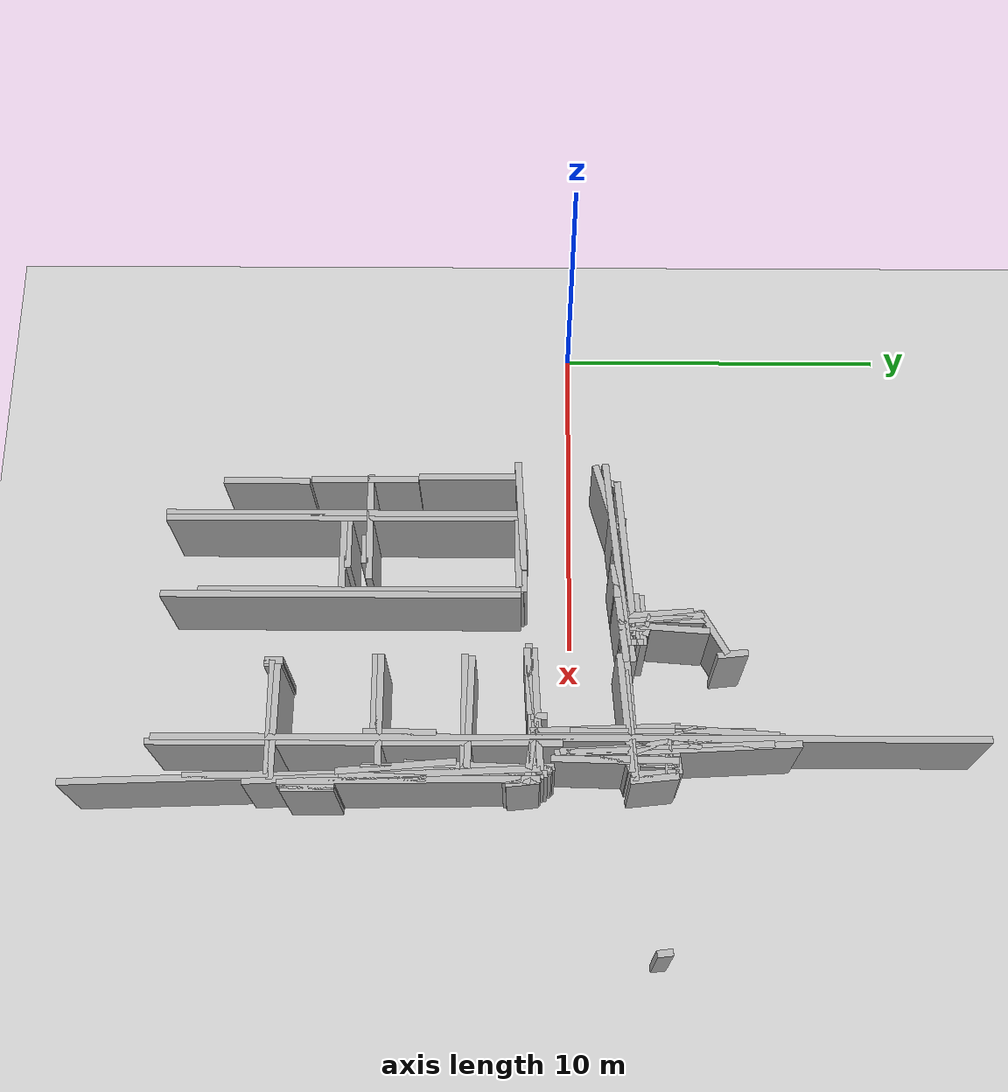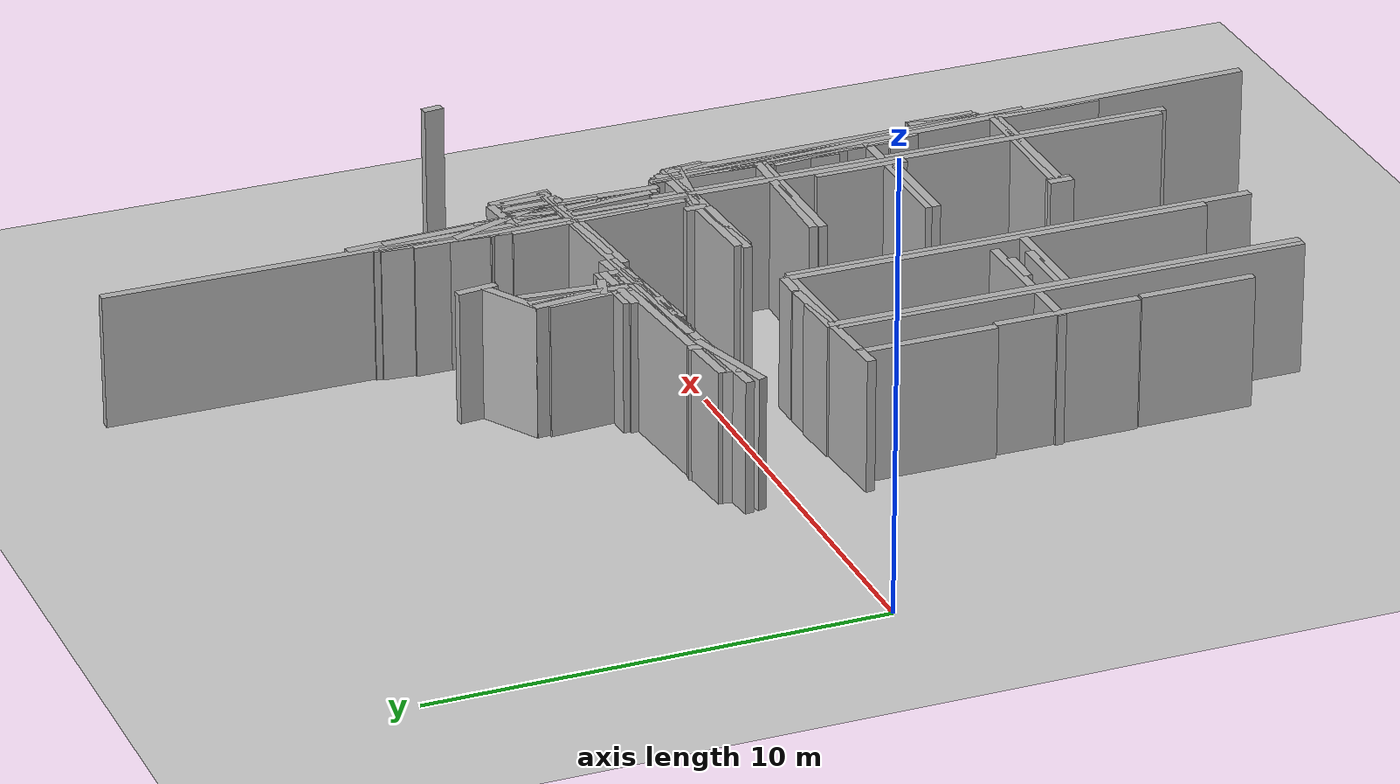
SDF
<sdf version="1.6">
 <world name="aboureyhan">
  <model name="ground_plane">
   <static>true</static>
   <link name="link">
    <collision name="collision">
     <geometry><plane><normal>0 0 1</normal><size>100 100</size></plane></geometry>
    </collision>
    <visual name="visual">
     <geometry><plane><normal>0 0 1</normal><size>500 500</size></plane></geometry>
     <material>
      <ambient>0.8 0.8 0.8 1</ambient>
      <diffuse>0.8 0.8 0.8 1</diffuse>
      <specular>0.8 0.8 0.8 1</specular>
     </material>
    </visual>
   </link>
  </model>
  <model name="wall_3">
   <static>true</static>
   <pose>13.325000000000001 0.9499999999999993 1.5 0 0 -1.5359267452401064</pose>
   <link name="link">
    <collision name="collision"><geometry><box><size>4.302615483633186 0.2 3.0</size></box></geometry></collision>
    <visual name="visual">
     <geometry><box><size>4.302615483633186 0.2 3.0</size></box></geometry>
     <material><ambient>0.5 0.5 0.5 1</ambient><diffuse>0.7 0.7 0.7 1</diffuse></material>
    </visual>
   </link>
  </model>
  <model name="wall_10">
   <static>true</static>
   <pose>9.25 -6.825000000000001 1.5 0 0 1.5707963267948966</pose>
   <link name="link">
    <collision name="collision">
     <geometry><box><size>10.650000000000002 0.2 3.0</size></box></geometry>
    </collision>
    <visual name="visual">
     <geometry><box><size>10.650000000000002 0.2 3.0</size></box></geometry>
     <material><ambient>0.5 0.5 0.5 1</ambient><diffuse>0.7 0.7 0.7 1</diffuse></material>
    </visual>
   </link>
  </model>
  <model name="wall_11">
   <static>true</static>
   <pose>6.800000000000001 -6.775 1.5 0 0 1.5707963267948966</pose>
   <link name="link">
    <collision name="collision">
     <geometry><box><size>10.750000000000004 0.2 3.0</size></box></geometry>
    </collision>
    <visual name="visual">
     <geometry><box><size>10.750000000000004 0.2 3.0</size></box></geometry>
     <material><ambient>0.5 0.5 0.5 1</ambient><diffuse>0.7 0.7 0.7 1</diffuse></material>
    </visual>
   </link>
  </model>
  <model name="wall_16">
   <static>true</static>
   <pose>6.65 -6.850000000000003 1.5 0 0 1.5707963267948966</pose>
   <link name="link">
    <collision name="collision">
     <geometry><box><size>10.599999999999998 0.2 3.0</size></box></geometry>
    </collision>
    <visual name="visual">
     <geometry><box><size>10.599999999999998 0.2 3.0</size></box></geometry>
     <material><ambient>0.5 0.5 0.5 1</ambient><diffuse>0.7 0.7 0.7 1</diffuse></material>
    </visual>
   </link>
  </model>
  <model name="wall_28">
   <static>true</static>
   <pose>13.600000000000001 -0.02500000000000213 1.5 0 0 1.5707963267948966</pose>
   <link name="link">
    <collision name="collision"><geometry><box><size>24.15 0.2 3.0</size></box></geometry></collision>
    <visual name="visual">
     <geometry><box><size>24.15 0.2 3.0</size></box></geometry>
     <material><ambient>0.5 0.5 0.5 1</ambient><diffuse>0.7 0.7 0.7 1</diffuse></material>
    </visual>
   </link>
  </model>
  <model name="wall_46">
   <static>true</static>
   <pose>14.700000000000003 -7.575000000000001 1.5 0 0 -1.5354753335833098</pose>
   <link name="link">
    <collision name="collision">
     <geometry><box><size>14.158831166448735 0.2 3.0</size></box></geometry>
    </collision>
    <visual name="visual">
     <geometry><box><size>14.158831166448735 0.2 3.0</size></box></geometry>
     <material><ambient>0.5 0.5 0.5 1</ambient><diffuse>0.7 0.7 0.7 1</diffuse></material>
    </visual>
   </link>
  </model>
  <model name="wall_49">
   <static>true</static>
   <pose>9.100000000000001 -6.225 1.5 0 0 1.5707963267948966</pose>
   <link name="link">
    <collision name="collision"><geometry><box><size>9.650000000000002 0.2 3.0</size></box></geometry></collision>
    <visual name="visual">
     <geometry><box><size>9.650000000000002 0.2 3.0</size></box></geometry>
     <material><ambient>0.5 0.5 0.5 1</ambient><diffuse>0.7 0.7 0.7 1</diffuse></material>
    </visual>
   </link>
  </model>
  <model name="wall_61">
   <static>true</static>
   <pose>14.700000000000001 -5.15 1.5 0 0 -1.52377219495215</pose>
   <link name="link">
    <collision name="collision"><geometry><box><size>8.509406559801926 0.2 3.0</size></box></geometry></collision>
    <visual name="visual">
     <geometry><box><size>8.509406559801926 0.2 3.0</size></box></geometry>
     <material><ambient>0.5 0.5 0.5 1</ambient><diffuse>0.7 0.7 0.7 1</diffuse></material>
    </visual>
   </link>
  </model>
  <model name="wall_79">
   <static>true</static>
   <pose>14.825000000000001 -1.4499999999999993 1.5 0 0 -1.525373047373319</pose>
   <link name="link">
    <collision name="collision">
     <geometry><box><size>1.1011357772772634 0.2 3.0</size></box></geometry>
    </collision>
    <visual name="visual">
     <geometry><box><size>1.1011357772772634 0.2 3.0</size></box></geometry>
     <material><ambient>0.5 0.5 0.5 1</ambient><diffuse>0.7 0.7 0.7 1</diffuse></material>
    </visual>
   </link>
  </model>
  <model name="wall_82">
   <static>true</static>
   <pose>15.025 -7.550000000000001 1.5 0 0 1.539556493364628</pose>
   <link name="link">
    <collision name="collision">
     <geometry><box><size>1.6007810593582135 0.2 3.0</size></box></geometry>
    </collision>
    <visual name="visual">
     <geometry><box><size>1.6007810593582135 0.2 3.0</size></box></geometry>
     <material><ambient>0.5 0.5 0.5 1</ambient><diffuse>0.7 0.7 0.7 1</diffuse></material>
    </visual>
   </link>
  </model>
  <model name="wall_85">
   <static>true</static>
   <pose>10.250000000000002 2.724999999999998 1.5 0 0 1.4954674359665567</pose>
   <link name="link">
    <collision name="collision"><geometry><box><size>2.657536453183661 0.2 3.0</size></box></geometry></collision>
    <visual name="visual">
     <geometry><box><size>2.657536453183661 0.2 3.0</size></box></geometry>
     <material><ambient>0.5 0.5 0.5 1</ambient><diffuse>0.7 0.7 0.7 1</diffuse></material>
    </visual>
   </link>
  </model>
  <model name="wall_91">
   <static>true</static>
   <pose>12.850000000000001 -1.1750000000000007 1.5 0 0 0.03569911267932361</pose>
   <link name="link">
    <collision name="collision"><geometry><box><size>4.202677717836573 0.2 3.0</size></box></geometry></collision>
    <visual name="visual">
     <geometry><box><size>4.202677717836573 0.2 3.0</size></box></geometry>
     <material><ambient>0.5 0.5 0.5 1</ambient><diffuse>0.7 0.7 0.7 1</diffuse></material>
    </visual>
   </link>
  </model>
  <model name="wall_110">
   <static>true</static>
   <pose>13.75 -6.25 1.5 0 0 1.5707963267948966</pose>
   <link name="link">
    <collision name="collision"><geometry><box><size>12.0 0.2 3.0</size></box></geometry></collision>
    <visual name="visual">
     <geometry><box><size>12.0 0.2 3.0</size></box></geometry>
     <material><ambient>0.5 0.5 0.5 1</ambient><diffuse>0.7 0.7 0.7 1</diffuse></material>
    </visual>
   </link>
  </model>
  <model name="wall_112">
   <static>true</static>
   <pose>13.200000000000001 1.6749999999999972 1.5 0 0 0.07561314323682983</pose>
   <link name="link">
    <collision name="collision">
     <geometry><box><size>3.3094561486745833 0.2 3.0</size></box></geometry>
    </collision>
    <visual name="visual">
     <geometry><box><size>3.3094561486745833 0.2 3.0</size></box></geometry>
     <material><ambient>0.5 0.5 0.5 1</ambient><diffuse>0.7 0.7 0.7 1</diffuse></material>
    </visual>
   </link>
  </model>
  <model name="wall_121">
   <static>true</static>
   <pose>5.450000000000001 -3.0500000000000007 1.5 0 0 1.5707963267948966</pose>
   <link name="link">
    <collision name="collision">
     <geometry><box><size>3.1000000000000014 0.2 3.0</size></box></geometry>
    </collision>
    <visual name="visual">
     <geometry><box><size>3.1000000000000014 0.2 3.0</size></box></geometry>
     <material><ambient>0.5 0.5 0.5 1</ambient><diffuse>0.7 0.7 0.7 1</diffuse></material>
    </visual>
   </link>
  </model>
  <model name="wall_167">
   <static>true</static>
   <pose>14.600000000000001 -3.4250000000000007 1.5 0 0 1.5327195012050927</pose>
   <link name="link">
    <collision name="collision"><geometry><box><size>5.253808142671378 0.2 3.0</size></box></geometry></collision>
    <visual name="visual">
     <geometry><box><size>5.253808142671378 0.2 3.0</size></box></geometry>
     <material><ambient>0.5 0.5 0.5 1</ambient><diffuse>0.7 0.7 0.7 1</diffuse></material>
    </visual>
   </link>
  </model>
  <model name="wall_180">
   <static>true</static>
   <pose>7.275000000000001 -1.4250000000000007 1.5 0 0 0.04345089539153453</pose>
   <link name="link">
    <collision name="collision">
     <geometry><box><size>1.1510864433221344 0.2 3.0</size></box></geometry>
    </collision>
    <visual name="visual">
     <geometry><box><size>1.1510864433221344 0.2 3.0</size></box></geometry>
     <material><ambient>0.5 0.5 0.5 1</ambient><diffuse>0.7 0.7 0.7 1</diffuse></material>
    </visual>
   </link>
  </model>
  <model name="wall_200">
   <static>true</static>
   <pose>14.850000000000001 -4.9250000000000025 1.5 0 0 -1.5564088304059707</pose>
   <link name="link">
    <collision name="collision"><geometry><box><size>6.950719387228921 0.2 3.0</size></box></geometry></collision>
    <visual name="visual">
     <geometry><box><size>6.950719387228921 0.2 3.0</size></box></geometry>
     <material><ambient>0.5 0.5 0.5 1</ambient><diffuse>0.7 0.7 0.7 1</diffuse></material>
    </visual>
   </link>
  </model>
  <model name="wall_203">
   <static>true</static>
   <pose>7.9 1.3499999999999979 1.5 0 0 0.10308160852270046</pose>
   <link name="link">
    <collision name="collision"><geometry><box><size>5.830951894845301 0.2 3.0</size></box></geometry></collision>
    <visual name="visual">
     <geometry><box><size>5.830951894845301 0.2 3.0</size></box></geometry>
     <material><ambient>0.5 0.5 0.5 1</ambient><diffuse>0.7 0.7 0.7 1</diffuse></material>
    </visual>
   </link>
  </model>
  <model name="wall_217">
   <static>true</static>
   <pose>13.400000000000002 2.6000000000000014 1.5 0 0 1.5707963267948966</pose>
   <link name="link">
    <collision name="collision"><geometry><box><size>5.299999999999997 0.2 3.0</size></box></geometry></collision>
    <visual name="visual">
     <geometry><box><size>5.299999999999997 0.2 3.0</size></box></geometry>
     <material><ambient>0.5 0.5 0.5 1</ambient><diffuse>0.7 0.7 0.7 1</diffuse></material>
    </visual>
   </link>
  </model>
  <model name="wall_219">
   <static>true</static>
   <pose>10.0 2.6750000000000007 1.5 0 0 1.5707963267948966</pose>
   <link name="link">
    <collision name="collision">
     <geometry><box><size>2.5500000000000043 0.2 3.0</size></box></geometry>
    </collision>
    <visual name="visual">
     <geometry><box><size>2.5500000000000043 0.2 3.0</size></box></geometry>
     <material><ambient>0.5 0.5 0.5 1</ambient><diffuse>0.7 0.7 0.7 1</diffuse></material>
    </visual>
   </link>
  </model>
  <model name="wall_230">
   <static>true</static>
   <pose>14.425 -2.6750000000000007 1.5 0 0 1.5355168532013057</pose>
   <link name="link">
    <collision name="collision"><geometry><box><size>4.252646234992991 0.2 3.0</size></box></geometry></collision>
    <visual name="visual">
     <geometry><box><size>4.252646234992991 0.2 3.0</size></box></geometry>
     <material><ambient>0.5 0.5 0.5 1</ambient><diffuse>0.7 0.7 0.7 1</diffuse></material>
    </visual>
   </link>
  </model>
  <model name="wall_236">
   <static>true</static>
   <pose>15.100000000000001 -7.525 1.5 0 0 1.5707963267948966</pose>
   <link name="link">
    <collision name="collision">
     <geometry><box><size>1.5500000000000007 0.2 3.0</size></box></geometry>
    </collision>
    <visual name="visual">
     <geometry><box><size>1.5500000000000007 0.2 3.0</size></box></geometry>
     <material><ambient>0.5 0.5 0.5 1</ambient><diffuse>0.7 0.7 0.7 1</diffuse></material>
    </visual>
   </link>
  </model>
  <model name="wall_241">
   <static>true</static>
   <pose>10.7 1.75 1.5 0 0 1.5707963267948966</pose>
   <link name="link">
    <collision name="collision">
     <geometry><box><size>0.7000000000000028 0.2 3.0</size></box></geometry>
    </collision>
    <visual name="visual">
     <geometry><box><size>0.7000000000000028 0.2 3.0</size></box></geometry>
     <material><ambient>0.5 0.5 0.5 1</ambient><diffuse>0.7 0.7 0.7 1</diffuse></material>
    </visual>
   </link>
  </model>
  <model name="wall_242">
   <static>true</static>
   <pose>5.650000000000001 1.1999999999999993 1.5 0 0 1.3258176636680326</pose>
   <link name="link">
    <collision name="collision">
     <geometry><box><size>0.41231056256176457 0.2 3.0</size></box></geometry>
    </collision>
    <visual name="visual">
     <geometry><box><size>0.41231056256176457 0.2 3.0</size></box></geometry>
     <material><ambient>0.5 0.5 0.5 1</ambient><diffuse>0.7 0.7 0.7 1</diffuse></material>
    </visual>
   </link>
  </model>
  <model name="wall_243">
   <static>true</static>
   <pose>11.05 4.699999999999999 1.5 0 0 -1.4601391056209991</pose>
   <link name="link">
    <collision name="collision">
     <geometry><box><size>0.9055385138137404 0.2 3.0</size></box></geometry>
    </collision>
    <visual name="visual">
     <geometry><box><size>0.9055385138137404 0.2 3.0</size></box></geometry>
     <material><ambient>0.5 0.5 0.5 1</ambient><diffuse>0.7 0.7 0.7 1</diffuse></material>
    </visual>
   </link>
  </model>
  <model name="wall_246">
   <static>true</static>
   <pose>13.55 2.4499999999999993 1.5 0 0 1.5707963267948966</pose>
   <link name="link">
    <collision name="collision"><geometry><box><size>7.300000000000004 0.2 3.0</size></box></geometry></collision>
    <visual name="visual">
     <geometry><box><size>7.300000000000004 0.2 3.0</size></box></geometry>
     <material><ambient>0.5 0.5 0.5 1</ambient><diffuse>0.7 0.7 0.7 1</diffuse></material>
    </visual>
   </link>
  </model>
  <model name="wall_255">
   <static>true</static>
   <pose>13.950000000000001 2.3249999999999993 1.5 0 0 1.301628834009194</pose>
   <link name="link">
    <collision name="collision">
     <geometry><box><size>1.5041608956491288 0.2 3.0</size></box></geometry>
    </collision>
    <visual name="visual">
     <geometry><box><size>1.5041608956491288 0.2 3.0</size></box></geometry>
     <material><ambient>0.5 0.5 0.5 1</ambient><diffuse>0.7 0.7 0.7 1</diffuse></material>
    </visual>
   </link>
  </model>
  <model name="wall_268">
   <static>true</static>
   <pose>14.350000000000001 2.299999999999997 1.5 0 0 1.5707963267948966</pose>
   <link name="link">
    <collision name="collision"><geometry><box><size>1.5 0.2 3.0</size></box></geometry></collision>
    <visual name="visual">
     <geometry><box><size>1.5 0.2 3.0</size></box></geometry>
     <material><ambient>0.5 0.5 0.5 1</ambient><diffuse>0.7 0.7 0.7 1</diffuse></material>
    </visual>
   </link>
  </model>
  <model name="wall_296">
   <static>true</static>
   <pose>14.75 -2.075000000000003 1.5 0 0 -1.5707963267948966</pose>
   <link name="link">
    <collision name="collision">
     <geometry><box><size>0.5499999999999972 0.2 3.0</size></box></geometry>
    </collision>
    <visual name="visual">
     <geometry><box><size>0.5499999999999972 0.2 3.0</size></box></geometry>
     <material><ambient>0.5 0.5 0.5 1</ambient><diffuse>0.7 0.7 0.7 1</diffuse></material>
    </visual>
   </link>
  </model>
  <model name="wall_298">
   <static>true</static>
   <pose>19.675000000000004 2.5249999999999986 1.5 0 0 -1.460139105621</pose>
   <link name="link">
    <collision name="collision">
     <geometry><box><size>0.45276925690687375 0.2 3.0</size></box></geometry>
    </collision>
    <visual name="visual">
     <geometry><box><size>0.45276925690687375 0.2 3.0</size></box></geometry>
     <material><ambient>0.5 0.5 0.5 1</ambient><diffuse>0.7 0.7 0.7 1</diffuse></material>
    </visual>
   </link>
  </model>
  <model name="wall_306">
   <static>true</static>
   <pose>5.600000000000001 -9.200000000000001 1.5 0 0 1.5707963267948966</pose>
   <link name="link">
    <collision name="collision"><geometry><box><size>2.599999999999998 0.2 3.0</size></box></geometry></collision>
    <visual name="visual">
     <geometry><box><size>2.599999999999998 0.2 3.0</size></box></geometry>
     <material><ambient>0.5 0.5 0.5 1</ambient><diffuse>0.7 0.7 0.7 1</diffuse></material>
    </visual>
   </link>
  </model>
  <model name="wall_313">
   <static>true</static>
   <pose>5.550000000000001 -6.225000000000001 1.5 0 0 1.5707963267948966</pose>
   <link name="link">
    <collision name="collision"><geometry><box><size>3.25 0.2 3.0</size></box></geometry></collision>
    <visual name="visual">
     <geometry><box><size>3.25 0.2 3.0</size></box></geometry>
     <material><ambient>0.5 0.5 0.5 1</ambient><diffuse>0.7 0.7 0.7 1</diffuse></material>
    </visual>
   </link>
  </model>
  <model name="wall_328">
   <static>true</static>
   <pose>7.075 -6.025000000000002 1.5 0 0 0.014924264990086263</pose>
   <link name="link">
    <collision name="collision"><geometry><box><size>3.350373113550191 0.2 3.0</size></box></geometry></collision>
    <visual name="visual">
     <geometry><box><size>3.350373113550191 0.2 3.0</size></box></geometry>
     <material><ambient>0.5 0.5 0.5 1</ambient><diffuse>0.7 0.7 0.7 1</diffuse></material>
    </visual>
   </link>
  </model>
  <model name="wall_337">
   <static>true</static>
   <pose>14.775000000000002 2.349999999999998 1.5 0 0 -1.464060654145762</pose>
   <link name="link">
    <collision name="collision">
     <geometry><box><size>1.4080127840328707 0.2 3.0</size></box></geometry>
    </collision>
    <visual name="visual">
     <geometry><box><size>1.4080127840328707 0.2 3.0</size></box></geometry>
     <material><ambient>0.5 0.5 0.5 1</ambient><diffuse>0.7 0.7 0.7 1</diffuse></material>
    </visual>
   </link>
  </model>
  <model name="wall_338">
   <static>true</static>
   <pose>12.775000000000002 -1.0 1.5 0 0 0.05328285155969312</pose>
   <link name="link">
    <collision name="collision">
     <geometry><box><size>3.7553295461250804 0.2 3.0</size></box></geometry>
    </collision>
    <visual name="visual">
     <geometry><box><size>3.7553295461250804 0.2 3.0</size></box></geometry>
     <material><ambient>0.5 0.5 0.5 1</ambient><diffuse>0.7 0.7 0.7 1</diffuse></material>
    </visual>
   </link>
  </model>
  <model name="wall_363">
   <static>true</static>
   <pose>7.925000000000001 -1.5750000000000028 1.5 0 0 0.02325162281046161</pose>
   <link name="link">
    <collision name="collision">
     <geometry><box><size>2.1505813167606553 0.2 3.0</size></box></geometry>
    </collision>
    <visual name="visual">
     <geometry><box><size>2.1505813167606553 0.2 3.0</size></box></geometry>
     <material><ambient>0.5 0.5 0.5 1</ambient><diffuse>0.7 0.7 0.7 1</diffuse></material>
    </visual>
   </link>
  </model>
  <model name="wall_373">
   <static>true</static>
   <pose>9.775 1.4250000000000007 1.5 0 0 0.11425432796143996</pose>
   <link name="link">
    <collision name="collision"><geometry><box><size>3.070016286601751 0.2 3.0</size></box></geometry></collision>
    <visual name="visual">
     <geometry><box><size>3.070016286601751 0.2 3.0</size></box></geometry>
     <material><ambient>0.5 0.5 0.5 1</ambient><diffuse>0.7 0.7 0.7 1</diffuse></material>
    </visual>
   </link>
  </model>
  <model name="wall_394">
   <static>true</static>
   <pose>14.450000000000001 -5.025000000000002 1.5 0 0 -1.484057988118911</pose>
   <link name="link">
    <collision name="collision">
     <geometry><box><size>3.4630189141845547 0.2 3.0</size></box></geometry>
    </collision>
    <visual name="visual">
     <geometry><box><size>3.4630189141845547 0.2 3.0</size></box></geometry>
     <material><ambient>0.5 0.5 0.5 1</ambient><diffuse>0.7 0.7 0.7 1</diffuse></material>
    </visual>
   </link>
  </model>
  <model name="wall_409">
   <static>true</static>
   <pose>12.950000000000003 -0.9500000000000028 1.5 0 0 -1.5707963267948966</pose>
   <link name="link">
    <collision name="collision"><geometry><box><size>0.5 0.2 3.0</size></box></geometry></collision>
    <visual name="visual">
     <geometry><box><size>0.5 0.2 3.0</size></box></geometry>
     <material><ambient>0.5 0.5 0.5 1</ambient><diffuse>0.7 0.7 0.7 1</diffuse></material>
    </visual>
   </link>
  </model>
  <model name="wall_410">
   <static>true</static>
   <pose>13.825000000000001 2.849999999999998 1.5 0 0 -1.5161632475555376</pose>
   <link name="link">
    <collision name="collision"><geometry><box><size>6.409563167642548 0.2 3.0</size></box></geometry></collision>
    <visual name="visual">
     <geometry><box><size>6.409563167642548 0.2 3.0</size></box></geometry>
     <material><ambient>0.5 0.5 0.5 1</ambient><diffuse>0.7 0.7 0.7 1</diffuse></material>
    </visual>
   </link>
  </model>
  <model name="wall_432">
   <static>true</static>
   <pose>13.000000000000002 -8.700000000000003 1.5 0 0 0.0</pose>
   <link name="link">
    <collision name="collision"><geometry><box><size>3.400000000000002 0.2 3.0</size></box></geometry></collision>
    <visual name="visual">
     <geometry><box><size>3.400000000000002 0.2 3.0</size></box></geometry>
     <material><ambient>0.5 0.5 0.5 1</ambient><diffuse>0.7 0.7 0.7 1</diffuse></material>
    </visual>
   </link>
  </model>
  <model name="wall_458">
   <static>true</static>
   <pose>12.8 -3.1000000000000014 1.5 0 0 0.0</pose>
   <link name="link">
    <collision name="collision">
     <geometry><box><size>3.3999999999999986 0.2 3.0</size></box></geometry>
    </collision>
    <visual name="visual">
     <geometry><box><size>3.3999999999999986 0.2 3.0</size></box></geometry>
     <material><ambient>0.5 0.5 0.5 1</ambient><diffuse>0.7 0.7 0.7 1</diffuse></material>
    </visual>
   </link>
  </model>
  <model name="wall_462">
   <static>true</static>
   <pose>12.825000000000001 -2.9499999999999993 1.5 0 0 -0.029841884667109818</pose>
   <link name="link">
    <collision name="collision">
     <geometry><box><size>3.3514922049737765 0.2 3.0</size></box></geometry>
    </collision>
    <visual name="visual">
     <geometry><box><size>3.3514922049737765 0.2 3.0</size></box></geometry>
     <material><ambient>0.5 0.5 0.5 1</ambient><diffuse>0.7 0.7 0.7 1</diffuse></material>
    </visual>
   </link>
  </model>
  <model name="wall_477">
   <static>true</static>
   <pose>6.700000000000001 -1.5 1.5 0 0 0.057080782406265414</pose>
   <link name="link">
    <collision name="collision"><geometry><box><size>3.505709628591621 0.2 3.0</size></box></geometry></collision>
    <visual name="visual">
     <geometry><box><size>3.505709628591621 0.2 3.0</size></box></geometry>
     <material><ambient>0.5 0.5 0.5 1</ambient><diffuse>0.7 0.7 0.7 1</diffuse></material>
    </visual>
   </link>
  </model>
  <model name="wall_485">
   <static>true</static>
   <pose>7.800000000000001 -6.149999999999999 1.5 0 0 0.0</pose>
   <link name="link">
    <collision name="collision">
     <geometry><box><size>0.8999999999999986 0.2 3.0</size></box></geometry>
    </collision>
    <visual name="visual">
     <geometry><box><size>0.8999999999999986 0.2 3.0</size></box></geometry>
     <material><ambient>0.5 0.5 0.5 1</ambient><diffuse>0.7 0.7 0.7 1</diffuse></material>
    </visual>
   </link>
  </model>
  <model name="wall_496">
   <static>true</static>
   <pose>10.025 2.0749999999999993 1.5 0 0 0.032246882435256655</pose>
   <link name="link">
    <collision name="collision">
     <geometry><box><size>1.5508062419270832 0.2 3.0</size></box></geometry>
    </collision>
    <visual name="visual">
     <geometry><box><size>1.5508062419270832 0.2 3.0</size></box></geometry>
     <material><ambient>0.5 0.5 0.5 1</ambient><diffuse>0.7 0.7 0.7 1</diffuse></material>
    </visual>
   </link>
  </model>
  <model name="wall_503">
   <static>true</static>
   <pose>11.3 -8.675000000000002 1.5 0 0 -1.5707963267948966</pose>
   <link name="link">
    <collision name="collision">
     <geometry><box><size>0.5500000000000007 0.2 3.0</size></box></geometry>
    </collision>
    <visual name="visual">
     <geometry><box><size>0.5500000000000007 0.2 3.0</size></box></geometry>
     <material><ambient>0.5 0.5 0.5 1</ambient><diffuse>0.7 0.7 0.7 1</diffuse></material>
    </visual>
   </link>
  </model>
  <model name="wall_510">
   <static>true</static>
   <pose>14.750000000000002 -4.500000000000002 1.5 0 0 -1.5195591593914775</pose>
   <link name="link">
    <collision name="collision"><geometry><box><size>7.810249675906655 0.2 3.0</size></box></geometry></collision>
    <visual name="visual">
     <geometry><box><size>7.810249675906655 0.2 3.0</size></box></geometry>
     <material><ambient>0.5 0.5 0.5 1</ambient><diffuse>0.7 0.7 0.7 1</diffuse></material>
    </visual>
   </link>
  </model>
  <model name="wall_514">
   <static>true</static>
   <pose>8.05 1.625 1.5 0 0 0.09157985014268627</pose>
   <link name="link">
    <collision name="collision"><geometry><box><size>4.92061987964931 0.2 3.0</size></box></geometry></collision>
    <visual name="visual">
     <geometry><box><size>4.92061987964931 0.2 3.0</size></box></geometry>
     <material><ambient>0.5 0.5 0.5 1</ambient><diffuse>0.7 0.7 0.7 1</diffuse></material>
    </visual>
   </link>
  </model>
  <model name="wall_520">
   <static>true</static>
   <pose>12.825000000000001 -5.550000000000004 1.5 0 0 0.0</pose>
   <link name="link">
    <collision name="collision">
     <geometry><box><size>3.4499999999999993 0.2 3.0</size></box></geometry>
    </collision>
    <visual name="visual">
     <geometry><box><size>3.4499999999999993 0.2 3.0</size></box></geometry>
     <material><ambient>0.5 0.5 0.5 1</ambient><diffuse>0.7 0.7 0.7 1</diffuse></material>
    </visual>
   </link>
  </model>
  <model name="wall_521">
   <static>true</static>
   <pose>7.550000000000001 -6.649999999999999 1.5 0 0 0.0</pose>
   <link name="link">
    <collision name="collision">
     <geometry><box><size>1.6999999999999993 0.2 3.0</size></box></geometry>
    </collision>
    <visual name="visual">
     <geometry><box><size>1.6999999999999993 0.2 3.0</size></box></geometry>
     <material><ambient>0.5 0.5 0.5 1</ambient><diffuse>0.7 0.7 0.7 1</diffuse></material>
    </visual>
   </link>
  </model>
  <model name="wall_535">
   <static>true</static>
   <pose>12.825000000000001 1.5500000000000007 1.5 0 0 0.08430673252620781</pose>
   <link name="link">
    <collision name="collision"><geometry><box><size>3.562653505464713 0.2 3.0</size></box></geometry></collision>
    <visual name="visual">
     <geometry><box><size>3.562653505464713 0.2 3.0</size></box></geometry>
     <material><ambient>0.5 0.5 0.5 1</ambient><diffuse>0.7 0.7 0.7 1</diffuse></material>
    </visual>
   </link>
  </model>
  <model name="wall_540">
   <static>true</static>
   <pose>7.9750000000000005 -6.800000000000004 1.5 0 0 0.0</pose>
   <link name="link">
    <collision name="collision">
     <geometry><box><size>2.1500000000000004 0.2 3.0</size></box></geometry>
    </collision>
    <visual name="visual">
     <geometry><box><size>2.1500000000000004 0.2 3.0</size></box></geometry>
     <material><ambient>0.5 0.5 0.5 1</ambient><diffuse>0.7 0.7 0.7 1</diffuse></material>
    </visual>
   </link>
  </model>
  <model name="wall_545">
   <static>true</static>
   <pose>11.175 1.6000000000000014 1.5 0 0 0.0679225647535203</pose>
   <link name="link">
    <collision name="collision"><geometry><box><size>7.366987172514964 0.2 3.0</size></box></geometry></collision>
    <visual name="visual">
     <geometry><box><size>7.366987172514964 0.2 3.0</size></box></geometry>
     <material><ambient>0.5 0.5 0.5 1</ambient><diffuse>0.7 0.7 0.7 1</diffuse></material>
    </visual>
   </link>
  </model>
  <model name="wall_546">
   <static>true</static>
   <pose>14.625000000000002 2.424999999999997 1.5 0 0 -1.530817639671606</pose>
   <link name="link">
    <collision name="collision">
     <geometry><box><size>1.2509996003196804 0.2 3.0</size></box></geometry>
    </collision>
    <visual name="visual">
     <geometry><box><size>1.2509996003196804 0.2 3.0</size></box></geometry>
     <material><ambient>0.5 0.5 0.5 1</ambient><diffuse>0.7 0.7 0.7 1</diffuse></material>
    </visual>
   </link>
  </model>
  <model name="wall_577">
   <static>true</static>
   <pose>10.175 2.25 1.5 0 0 -0.2984989315861839</pose>
   <link name="link">
    <collision name="collision">
     <geometry><box><size>0.6800735254367717 0.2 3.0</size></box></geometry>
    </collision>
    <visual name="visual">
     <geometry><box><size>0.6800735254367717 0.2 3.0</size></box></geometry>
     <material><ambient>0.5 0.5 0.5 1</ambient><diffuse>0.7 0.7 0.7 1</diffuse></material>
    </visual>
   </link>
  </model>
  <model name="wall_610">
   <static>true</static>
   <pose>10.0 1.9499999999999993 1.5 0 0 0.062418809995958176</pose>
   <link name="link">
    <collision name="collision">
     <geometry><box><size>1.6031219541881412 0.2 3.0</size></box></geometry>
    </collision>
    <visual name="visual">
     <geometry><box><size>1.6031219541881412 0.2 3.0</size></box></geometry>
     <material><ambient>0.5 0.5 0.5 1</ambient><diffuse>0.7 0.7 0.7 1</diffuse></material>
    </visual>
   </link>
  </model>
  <model name="wall_617">
   <static>true</static>
   <pose>12.225000000000001 -5.700000000000003 1.5 0 0 0.0</pose>
   <link name="link">
    <collision name="collision"><geometry><box><size>2.25 0.2 3.0</size></box></geometry></collision>
    <visual name="visual">
     <geometry><box><size>2.25 0.2 3.0</size></box></geometry>
     <material><ambient>0.5 0.5 0.5 1</ambient><diffuse>0.7 0.7 0.7 1</diffuse></material>
    </visual>
   </link>
  </model>
  <model name="wall_623">
   <static>true</static>
   <pose>13.125000000000002 -8.575000000000001 1.5 0 0 -0.014491739065500232</pose>
   <link name="link">
    <collision name="collision">
     <geometry><box><size>3.4503622998172228 0.2 3.0</size></box></geometry>
    </collision>
    <visual name="visual">
     <geometry><box><size>3.4503622998172228 0.2 3.0</size></box></geometry>
     <material><ambient>0.5 0.5 0.5 1</ambient><diffuse>0.7 0.7 0.7 1</diffuse></material>
    </visual>
   </link>
  </model>
  <model name="wall_644">
   <static>true</static>
   <pose>14.725000000000001 -9.875000000000002 1.5 0 0 -1.5503909961083597</pose>
   <link name="link">
    <collision name="collision">
     <geometry><box><size>2.4505101509685683 0.2 3.0</size></box></geometry>
    </collision>
    <visual name="visual">
     <geometry><box><size>2.4505101509685683 0.2 3.0</size></box></geometry>
     <material><ambient>0.5 0.5 0.5 1</ambient><diffuse>0.7 0.7 0.7 1</diffuse></material>
    </visual>
   </link>
  </model>
  <model name="wall_651">
   <static>true</static>
   <pose>14.675000000000002 -1.7000000000000028 1.5 0 0 -1.545801533175976</pose>
   <link name="link">
    <collision name="collision"><geometry><box><size>2.000624902374256 0.2 3.0</size></box></geometry></collision>
    <visual name="visual">
     <geometry><box><size>2.000624902374256 0.2 3.0</size></box></geometry>
     <material><ambient>0.5 0.5 0.5 1</ambient><diffuse>0.7 0.7 0.7 1</diffuse></material>
    </visual>
   </link>
  </model>
  <model name="wall_655">
   <static>true</static>
   <pose>13.9 2.6499999999999986 1.5 0 0 -1.523213223517913</pose>
   <link name="link">
    <collision name="collision">
     <geometry><box><size>6.3071388124885885 0.2 3.0</size></box></geometry>
    </collision>
    <visual name="visual">
     <geometry><box><size>6.3071388124885885 0.2 3.0</size></box></geometry>
     <material><ambient>0.5 0.5 0.5 1</ambient><diffuse>0.7 0.7 0.7 1</diffuse></material>
    </visual>
   </link>
  </model>
  <model name="wall_665">
   <static>true</static>
   <pose>14.250000000000002 1.2249999999999979 1.5 0 0 1.5434059183200346</pose>
   <link name="link">
    <collision name="collision"><geometry><box><size>3.651369606051952 0.2 3.0</size></box></geometry></collision>
    <visual name="visual">
     <geometry><box><size>3.651369606051952 0.2 3.0</size></box></geometry>
     <material><ambient>0.5 0.5 0.5 1</ambient><diffuse>0.7 0.7 0.7 1</diffuse></material>
    </visual>
   </link>
  </model>
  <model name="wall_686">
   <static>true</static>
   <pose>14.150000000000002 2.75 1.5 0 0 0.0</pose>
   <link name="link">
    <collision name="collision"><geometry><box><size>1.0 0.2 3.0</size></box></geometry></collision>
    <visual name="visual">
     <geometry><box><size>1.0 0.2 3.0</size></box></geometry>
     <material><ambient>0.5 0.5 0.5 1</ambient><diffuse>0.7 0.7 0.7 1</diffuse></material>
    </visual>
   </link>
  </model>
  <model name="wall_706">
   <static>true</static>
   <pose>9.825000000000001 2.5 1.5 0 0 -1.5027198685368963</pose>
   <link name="link">
    <collision name="collision">
     <geometry><box><size>2.2051077071199976 0.2 3.0</size></box></geometry>
    </collision>
    <visual name="visual">
     <geometry><box><size>2.2051077071199976 0.2 3.0</size></box></geometry>
     <material><ambient>0.5 0.5 0.5 1</ambient><diffuse>0.7 0.7 0.7 1</diffuse></material>
    </visual>
   </link>
  </model>
  <model name="wall_731">
   <static>true</static>
   <pose>10.25 1.8249999999999993 1.5 0 0 1.5707963267948966</pose>
   <link name="link">
    <collision name="collision">
     <geometry><box><size>0.8500000000000014 0.2 3.0</size></box></geometry>
    </collision>
    <visual name="visual">
     <geometry><box><size>0.8500000000000014 0.2 3.0</size></box></geometry>
     <material><ambient>0.5 0.5 0.5 1</ambient><diffuse>0.7 0.7 0.7 1</diffuse></material>
    </visual>
   </link>
  </model>
  <model name="wall_744">
   <static>true</static>
   <pose>14.450000000000003 -4.150000000000002 1.5 0 0 1.5707963267948966</pose>
   <link name="link">
    <collision name="collision">
     <geometry><box><size>3.6999999999999957 0.2 3.0</size></box></geometry>
    </collision>
    <visual name="visual">
     <geometry><box><size>3.6999999999999957 0.2 3.0</size></box></geometry>
     <material><ambient>0.5 0.5 0.5 1</ambient><diffuse>0.7 0.7 0.7 1</diffuse></material>
    </visual>
   </link>
  </model>
  <model name="wall_764">
   <static>true</static>
   <pose>13.450000000000003 -4.949999999999999 1.5 0 0 1.5707963267948966</pose>
   <link name="link">
    <collision name="collision">
     <geometry><box><size>2.1000000000000014 0.2 3.0</size></box></geometry>
    </collision>
    <visual name="visual">
     <geometry><box><size>2.1000000000000014 0.2 3.0</size></box></geometry>
     <material><ambient>0.5 0.5 0.5 1</ambient><diffuse>0.7 0.7 0.7 1</diffuse></material>
    </visual>
   </link>
  </model>
  <model name="wall_766">
   <static>true</static>
   <pose>14.750000000000002 -5.399999999999999 1.5 0 0 1.5308176396716073</pose>
   <link name="link">
    <collision name="collision">
     <geometry><box><size>2.5019992006393608 0.2 3.0</size></box></geometry>
    </collision>
    <visual name="visual">
     <geometry><box><size>2.5019992006393608 0.2 3.0</size></box></geometry>
     <material><ambient>0.5 0.5 0.5 1</ambient><diffuse>0.7 0.7 0.7 1</diffuse></material>
    </visual>
   </link>
  </model>
  <model name="wall_768">
   <static>true</static>
   <pose>11.900000000000002 -1.25 1.5 0 0 0.04995839572193993</pose>
   <link name="link">
    <collision name="collision"><geometry><box><size>2.002498439450078 0.2 3.0</size></box></geometry></collision>
    <visual name="visual">
     <geometry><box><size>2.002498439450078 0.2 3.0</size></box></geometry>
     <material><ambient>0.5 0.5 0.5 1</ambient><diffuse>0.7 0.7 0.7 1</diffuse></material>
    </visual>
   </link>
  </model>
  <model name="wall_774">
   <static>true</static>
   <pose>9.125 1.5 1.5 0 0 0.14981245657289954</pose>
   <link name="link">
    <collision name="collision"><geometry><box><size>2.680018656651479 0.2 3.0</size></box></geometry></collision>
    <visual name="visual">
     <geometry><box><size>2.680018656651479 0.2 3.0</size></box></geometry>
     <material><ambient>0.5 0.5 0.5 1</ambient><diffuse>0.7 0.7 0.7 1</diffuse></material>
    </visual>
   </link>
  </model>
  <model name="wall_785">
   <static>true</static>
   <pose>13.65 2.6750000000000007 1.5 0 0 -1.209067085274965</pose>
   <link name="link">
    <collision name="collision">
     <geometry><box><size>1.9780040444852494 0.2 3.0</size></box></geometry>
    </collision>
    <visual name="visual">
     <geometry><box><size>1.9780040444852494 0.2 3.0</size></box></geometry>
     <material><ambient>0.5 0.5 0.5 1</ambient><diffuse>0.7 0.7 0.7 1</diffuse></material>
    </visual>
   </link>
  </model>
  <model name="wall_793">
   <static>true</static>
   <pose>14.900000000000002 -1.4250000000000007 1.5 0 0 -1.4659193880646608</pose>
   <link name="link">
    <collision name="collision">
     <geometry><box><size>0.9552486587271358 0.2 3.0</size></box></geometry>
    </collision>
    <visual name="visual">
     <geometry><box><size>0.9552486587271358 0.2 3.0</size></box></geometry>
     <material><ambient>0.5 0.5 0.5 1</ambient><diffuse>0.7 0.7 0.7 1</diffuse></material>
    </visual>
   </link>
  </model>
  <model name="wall_834">
   <static>true</static>
   <pose>13.825000000000001 3.3000000000000007 1.5 0 0 1.3854483767992003</pose>
   <link name="link">
    <collision name="collision">
     <geometry><box><size>0.8139410298049898 0.2 3.0</size></box></geometry>
    </collision>
    <visual name="visual">
     <geometry><box><size>0.8139410298049898 0.2 3.0</size></box></geometry>
     <material><ambient>0.5 0.5 0.5 1</ambient><diffuse>0.7 0.7 0.7 1</diffuse></material>
    </visual>
   </link>
  </model>
  <model name="wall_856">
   <static>true</static>
   <pose>8.425 1.375 1.5 0 0 -0.02856365783875837</pose>
   <link name="link">
    <collision name="collision">
     <geometry><box><size>1.7507141400011594 0.2 3.0</size></box></geometry>
    </collision>
    <visual name="visual">
     <geometry><box><size>1.7507141400011594 0.2 3.0</size></box></geometry>
     <material><ambient>0.5 0.5 0.5 1</ambient><diffuse>0.7 0.7 0.7 1</diffuse></material>
    </visual>
   </link>
  </model>
  <model name="wall_858">
   <static>true</static>
   <pose>9.975000000000001 2.6499999999999986 1.5 0 0 -1.4711276743037347</pose>
   <link name="link">
    <collision name="collision">
     <geometry><box><size>2.5124689052802225 0.2 3.0</size></box></geometry>
    </collision>
    <visual name="visual">
     <geometry><box><size>2.5124689052802225 0.2 3.0</size></box></geometry>
     <material><ambient>0.5 0.5 0.5 1</ambient><diffuse>0.7 0.7 0.7 1</diffuse></material>
    </visual>
   </link>
  </model>
  <model name="wall_862">
   <static>true</static>
   <pose>10.4 4.174999999999997 1.5 0 0 0.5232783221319752</pose>
   <link name="link">
    <collision name="collision">
     <geometry><box><size>1.5008331019803642 0.2 3.0</size></box></geometry>
    </collision>
    <visual name="visual">
     <geometry><box><size>1.5008331019803642 0.2 3.0</size></box></geometry>
     <material><ambient>0.5 0.5 0.5 1</ambient><diffuse>0.7 0.7 0.7 1</diffuse></material>
    </visual>
   </link>
  </model>
  <model name="wall_878">
   <static>true</static>
   <pose>13.950000000000003 2.924999999999997 1.5 0 0 -1.2220253232109897</pose>
   <link name="link">
    <collision name="collision">
     <geometry><box><size>2.9261749776799064 0.2 3.0</size></box></geometry>
    </collision>
    <visual name="visual">
     <geometry><box><size>2.9261749776799064 0.2 3.0</size></box></geometry>
     <material><ambient>0.5 0.5 0.5 1</ambient><diffuse>0.7 0.7 0.7 1</diffuse></material>
    </visual>
   </link>
  </model>
  <model name="wall_886">
   <static>true</static>
   <pose>8.825000000000001 -1.3999999999999986 1.5 0 0 0.0</pose>
   <link name="link">
    <collision name="collision">
     <geometry><box><size>0.6500000000000021 0.2 3.0</size></box></geometry>
    </collision>
    <visual name="visual">
     <geometry><box><size>0.6500000000000021 0.2 3.0</size></box></geometry>
     <material><ambient>0.5 0.5 0.5 1</ambient><diffuse>0.7 0.7 0.7 1</diffuse></material>
    </visual>
   </link>
  </model>
  <model name="wall_891">
   <static>true</static>
   <pose>14.025000000000002 -1.1749999999999972 1.5 0 0 -0.1343214419529684</pose>
   <link name="link">
    <collision name="collision">
     <geometry><box><size>1.8668154702594484 0.2 3.0</size></box></geometry>
    </collision>
    <visual name="visual">
     <geometry><box><size>1.8668154702594484 0.2 3.0</size></box></geometry>
     <material><ambient>0.5 0.5 0.5 1</ambient><diffuse>0.7 0.7 0.7 1</diffuse></material>
    </visual>
   </link>
  </model>
  <model name="wall_909">
   <static>true</static>
   <pose>6.875000000000001 1.5 1.5 0 0 1.4056476493802716</pose>
   <link name="link">
    <collision name="collision"><geometry><box><size>0.304138126514908 0.2 3.0</size></box></geometry></collision>
    <visual name="visual">
     <geometry><box><size>0.304138126514908 0.2 3.0</size></box></geometry>
     <material><ambient>0.5 0.5 0.5 1</ambient><diffuse>0.7 0.7 0.7 1</diffuse></material>
    </visual>
   </link>
  </model>
  <model name="wall_915">
   <static>true</static>
   <pose>14.000000000000002 2.974999999999998 1.5 0 0 0.114876605416898</pose>
   <link name="link">
    <collision name="collision">
     <geometry><box><size>1.3086252328302406 0.2 3.0</size></box></geometry>
    </collision>
    <visual name="visual">
     <geometry><box><size>1.3086252328302406 0.2 3.0</size></box></geometry>
     <material><ambient>0.5 0.5 0.5 1</ambient><diffuse>0.7 0.7 0.7 1</diffuse></material>
    </visual>
   </link>
  </model>
  <model name="wall_927">
   <static>true</static>
   <pose>11.375000000000002 -8.675000000000002 1.5 0 0 -1.4801364395941503</pose>
   <link name="link">
    <collision name="collision">
     <geometry><box><size>0.5522680508593638 0.2 3.0</size></box></geometry>
    </collision>
    <visual name="visual">
     <geometry><box><size>0.5522680508593638 0.2 3.0</size></box></geometry>
     <material><ambient>0.5 0.5 0.5 1</ambient><diffuse>0.7 0.7 0.7 1</diffuse></material>
    </visual>
   </link>
  </model>
  <model name="wall_934">
   <static>true</static>
   <pose>13.4 4.450000000000003 1.5 0 0 1.504228163019073</pose>
   <link name="link">
    <collision name="collision">
     <geometry><box><size>3.0066592756745814 0.2 3.0</size></box></geometry>
    </collision>
    <visual name="visual">
     <geometry><box><size>3.0066592756745814 0.2 3.0</size></box></geometry>
     <material><ambient>0.5 0.5 0.5 1</ambient><diffuse>0.7 0.7 0.7 1</diffuse></material>
    </visual>
   </link>
  </model>
  <model name="wall_940">
   <static>true</static>
   <pose>13.875 4.225000000000001 1.5 0 0 -1.5182132651839548</pose>
   <link name="link">
    <collision name="collision"><geometry><box><size>4.756574397610112 0.2 3.0</size></box></geometry></collision>
    <visual name="visual">
     <geometry><box><size>4.756574397610112 0.2 3.0</size></box></geometry>
     <material><ambient>0.5 0.5 0.5 1</ambient><diffuse>0.7 0.7 0.7 1</diffuse></material>
    </visual>
   </link>
  </model>
  <model name="wall_949">
   <static>true</static>
   <pose>9.925 2.6499999999999986 1.5 0 0 -1.4711276743037347</pose>
   <link name="link">
    <collision name="collision">
     <geometry><box><size>2.5124689052802225 0.2 3.0</size></box></geometry>
    </collision>
    <visual name="visual">
     <geometry><box><size>2.5124689052802225 0.2 3.0</size></box></geometry>
     <material><ambient>0.5 0.5 0.5 1</ambient><diffuse>0.7 0.7 0.7 1</diffuse></material>
    </visual>
   </link>
  </model>
  <model name="wall_962">
   <static>true</static>
   <pose>9.850000000000001 1.5749999999999993 1.5 0 0 0.15394466445834845</pose>
   <link name="link">
    <collision name="collision">
     <geometry><box><size>2.9347061181658374 0.2 3.0</size></box></geometry>
    </collision>
    <visual name="visual">
     <geometry><box><size>2.9347061181658374 0.2 3.0</size></box></geometry>
     <material><ambient>0.5 0.5 0.5 1</ambient><diffuse>0.7 0.7 0.7 1</diffuse></material>
    </visual>
   </link>
  </model>
  <model name="wall_963">
   <static>true</static>
   <pose>6.1000000000000005 1.0500000000000007 1.5 0 0 0.278299659005112</pose>
   <link name="link">
    <collision name="collision">
     <geometry><box><size>2.1840329667841556 0.2 3.0</size></box></geometry>
    </collision>
    <visual name="visual">
     <geometry><box><size>2.1840329667841556 0.2 3.0</size></box></geometry>
     <material><ambient>0.5 0.5 0.5 1</ambient><diffuse>0.7 0.7 0.7 1</diffuse></material>
    </visual>
   </link>
  </model>
  <model name="wall_967">
   <static>true</static>
   <pose>14.225000000000001 1.9249999999999972 1.5 0 0 1.5485777614681788</pose>
   <link name="link">
    <collision name="collision"><geometry><box><size>2.25055548698538 0.2 3.0</size></box></geometry></collision>
    <visual name="visual">
     <geometry><box><size>2.25055548698538 0.2 3.0</size></box></geometry>
     <material><ambient>0.5 0.5 0.5 1</ambient><diffuse>0.7 0.7 0.7 1</diffuse></material>
    </visual>
   </link>
  </model>
  <model name="wall_977">
   <static>true</static>
   <pose>13.650000000000002 3.875 1.5 0 0 -1.5707963267948966</pose>
   <link name="link">
    <collision name="collision">
     <geometry><box><size>0.5499999999999972 0.2 3.0</size></box></geometry>
    </collision>
    <visual name="visual">
     <geometry><box><size>0.5499999999999972 0.2 3.0</size></box></geometry>
     <material><ambient>0.5 0.5 0.5 1</ambient><diffuse>0.7 0.7 0.7 1</diffuse></material>
    </visual>
   </link>
  </model>
 </world>
</sdf>
